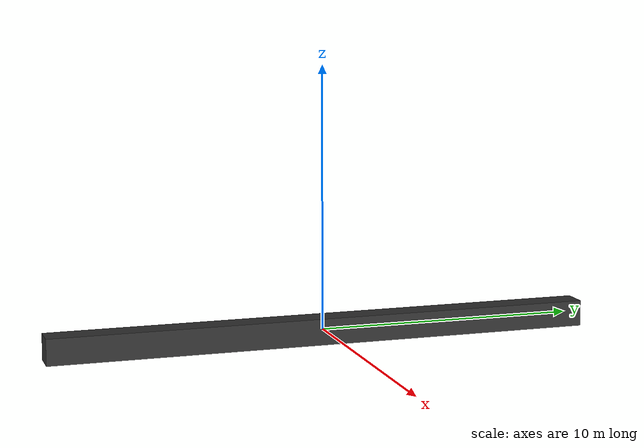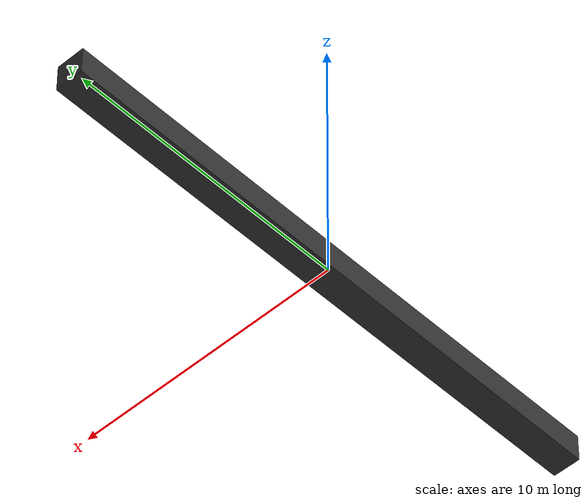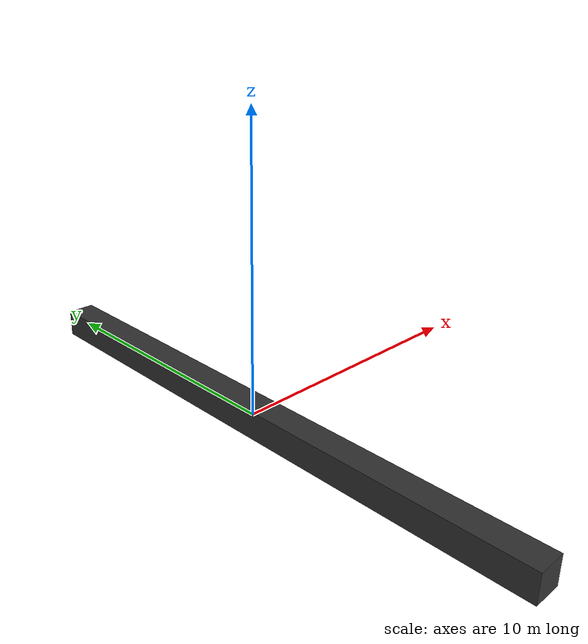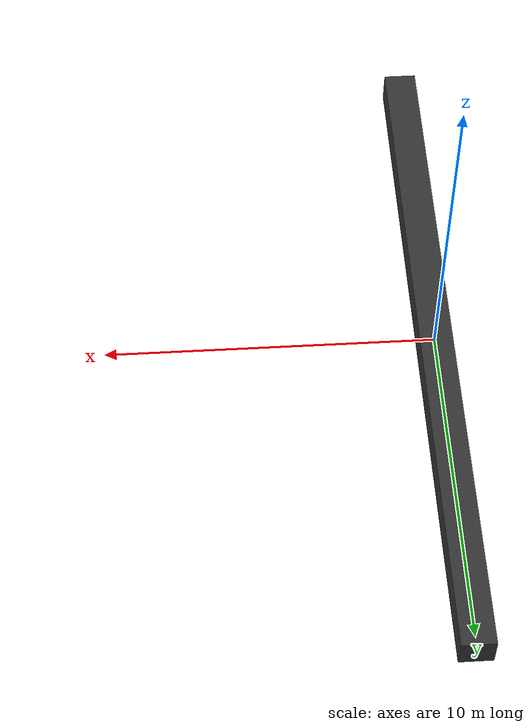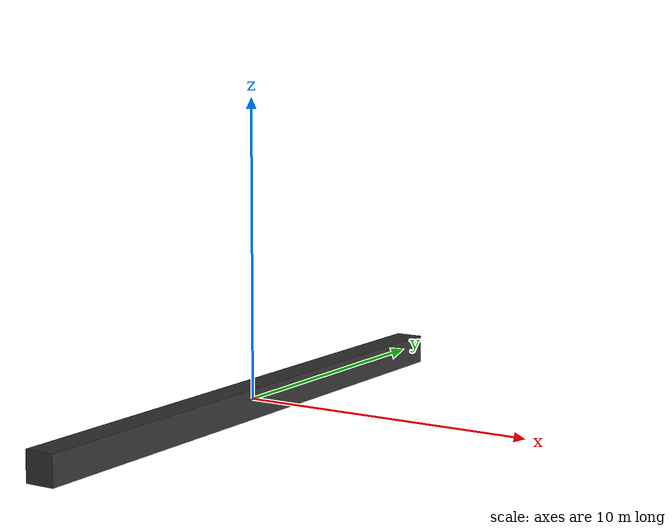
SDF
<?xml version="1.0"?>
<sdf version="1.8">
  <model name="balka">
    <static>true</static>
    <link name="balka">
      <pose>0 0 0 0 0 0</pose>
      <collision name="collision">
        <geometry>
          <box>
            <size>1 21 1</size>
          </box>
        </geometry>
      </collision>
      <visual name="visual">
        <geometry>
          <box>
            <size>1 21 1</size>
          </box>
        </geometry>
        <material>
          <ambient>0.2 0.2 0.2 1</ambient>
          <diffuse>0.2 0.2 0.2 1</diffuse>
        </material>
      </visual>
    </link>
  </model>
</sdf>
